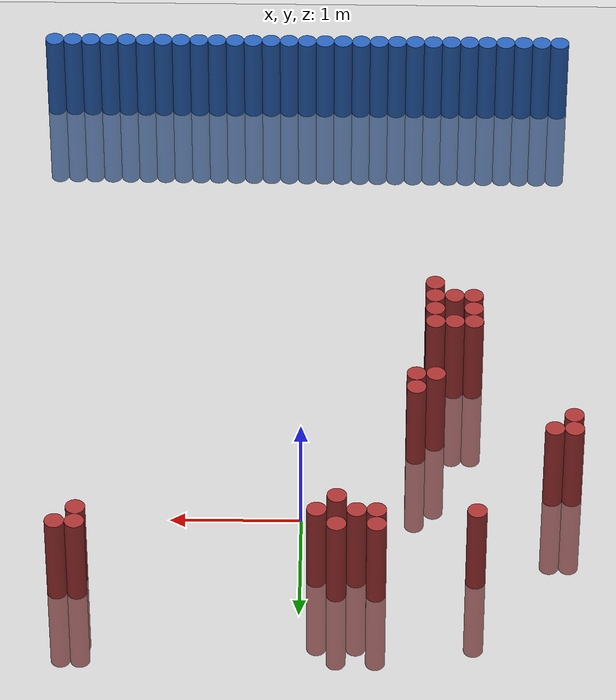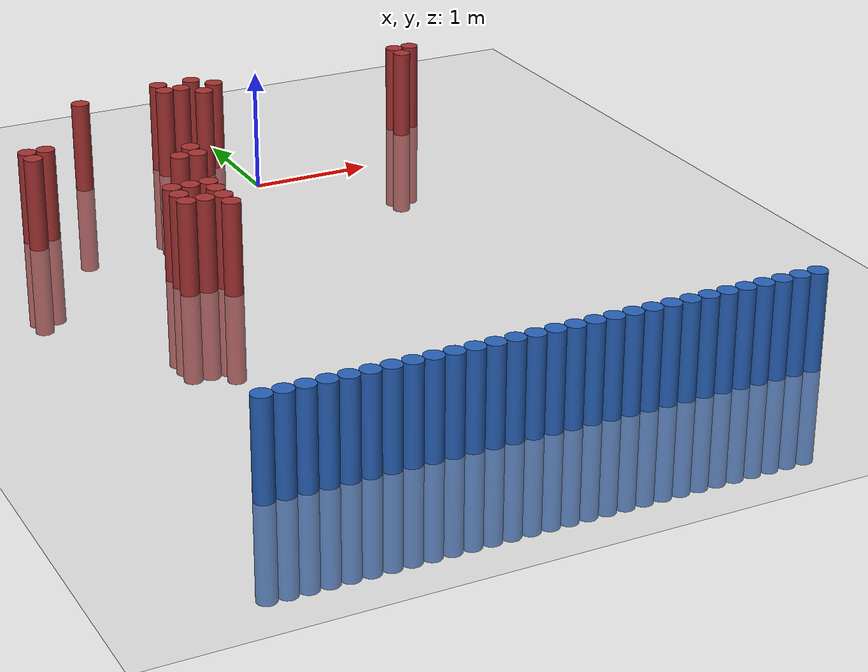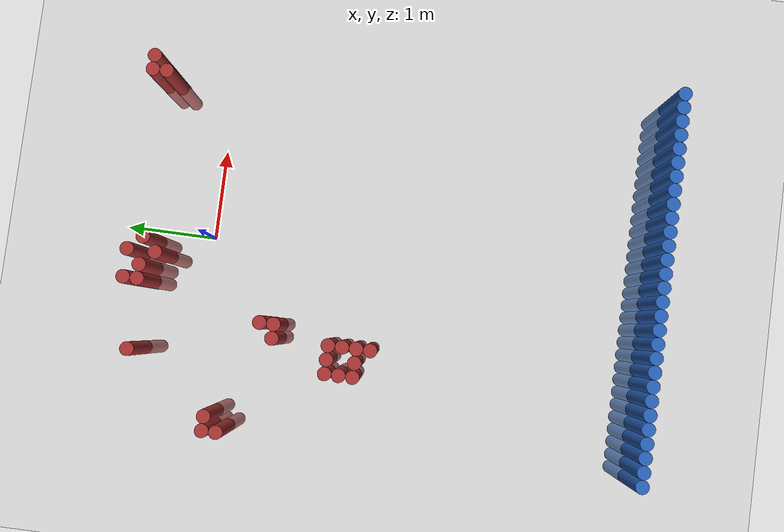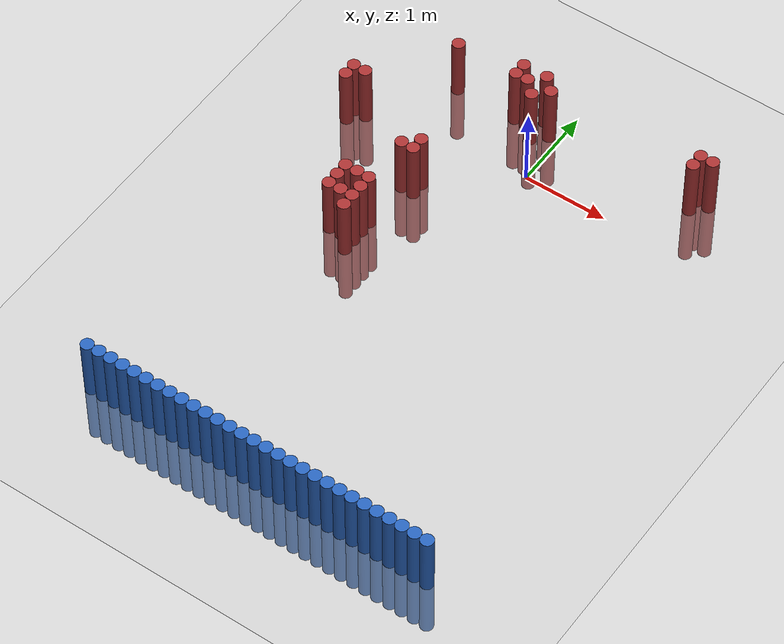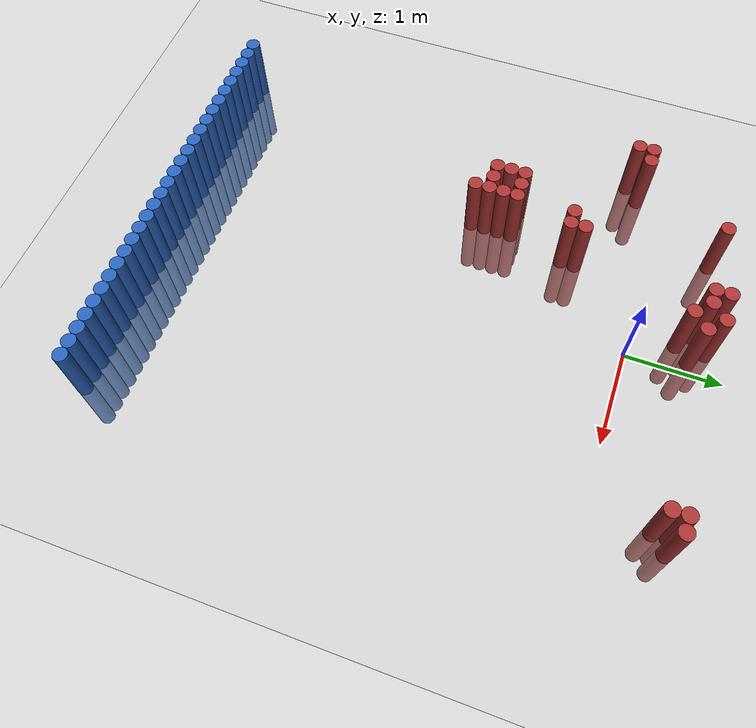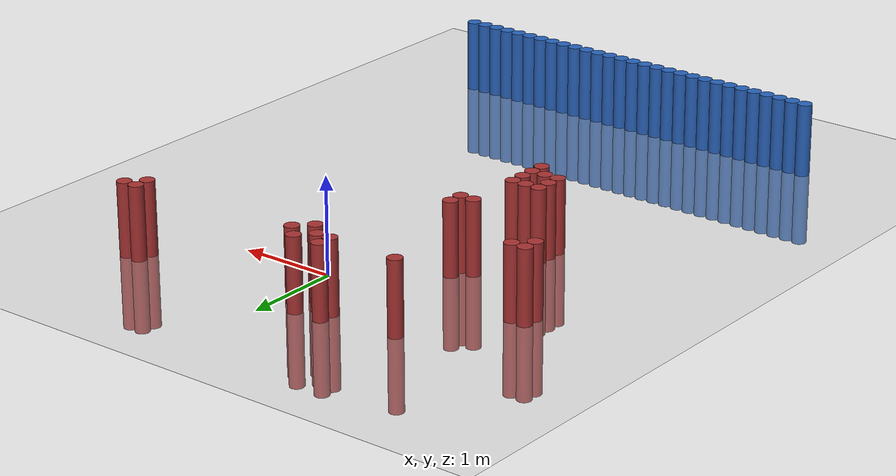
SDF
<sdf version="1.6">
 <world name="default">
  <model name="ground_plane">
   <static>1</static>
   <link name="link">
    <collision name="collision">
     <geometry><plane><normal>0 0 1</normal><size>100 100</size></plane></geometry>
     <surface><friction><ode><mu>100</mu><mu2>50</mu2></ode></friction></surface>
    </collision>
    <visual name="visual">
     <cast_shadows>0</cast_shadows>
     <geometry><plane><normal>0 0 1</normal><size>100 100</size></plane></geometry>
     <material>
      <script><uri>file://media/materials/scripts/gazebo.material</uri><name>Gazebo/Grey</name></script>
     </material>
    </visual>
   </link>
  </model>
  <model name="unit_cylinder_12">
   <static>1</static>
   <pose>2.125000 -4.925000 0.000000 0.000000 0.000000 0.000000</pose>
   <link name="link">
    <inertial>
     <mass>1</mass>
     <inertia><ixx>0.145833</ixx><ixy>0</ixy><ixz>0</ixz><iyy>0.145833</iyy><iyz>0</iyz><izz>0.125</izz></inertia>
    </inertial>
    <collision name="collision">
     <geometry><cylinder><radius>0.075000</radius><length>1.5</length></cylinder></geometry>
    </collision>
    <visual name="visual">
     <geometry><cylinder><radius>0.075000</radius><length>1.5</length></cylinder></geometry>
     <material>
      <ambient>0.152000 0.379000 0.720000 1</ambient>
      <diffuse>0.152000 0.379000 0.720000 1</diffuse>
     </material>
     <material>
      <script><name>Gazebo/Grey</name><uri>file://media/materials/scripts/gazebo.material</uri></script>
     </material>
    </visual>
   </link>
  </model>
  <model name="unit_cylinder_13">
   <static>1</static>
   <pose>1.975000 -4.925000 0.000000 0.000000 0.000000 0.000000</pose>
   <link name="link">
    <inertial>
     <mass>1</mass>
     <inertia><ixx>0.145833</ixx><ixy>0</ixy><ixz>0</ixz><iyy>0.145833</iyy><iyz>0</iyz><izz>0.125</izz></inertia>
    </inertial>
    <collision name="collision">
     <geometry><cylinder><radius>0.075000</radius><length>1.5</length></cylinder></geometry>
    </collision>
    <visual name="visual">
     <geometry><cylinder><radius>0.075000</radius><length>1.5</length></cylinder></geometry>
     <material>
      <ambient>0.152000 0.379000 0.720000 1</ambient>
      <diffuse>0.152000 0.379000 0.720000 1</diffuse>
     </material>
     <material>
      <script><name>Gazebo/Grey</name><uri>file://media/materials/scripts/gazebo.material</uri></script>
     </material>
    </visual>
   </link>
  </model>
  <model name="unit_cylinder_14">
   <static>1</static>
   <pose>1.825000 -4.925000 0.000000 0.000000 0.000000 0.000000</pose>
   <link name="link">
    <inertial>
     <mass>1</mass>
     <inertia><ixx>0.145833</ixx><ixy>0</ixy><ixz>0</ixz><iyy>0.145833</iyy><iyz>0</iyz><izz>0.125</izz></inertia>
    </inertial>
    <collision name="collision">
     <geometry><cylinder><radius>0.075000</radius><length>1.5</length></cylinder></geometry>
    </collision>
    <visual name="visual">
     <geometry><cylinder><radius>0.075000</radius><length>1.5</length></cylinder></geometry>
     <material>
      <ambient>0.152000 0.379000 0.720000 1</ambient>
      <diffuse>0.152000 0.379000 0.720000 1</diffuse>
     </material>
     <material>
      <script><name>Gazebo/Grey</name><uri>file://media/materials/scripts/gazebo.material</uri></script>
     </material>
    </visual>
   </link>
  </model>
  <model name="unit_cylinder_15">
   <static>1</static>
   <pose>1.675000 -4.925000 0.000000 0.000000 0.000000 0.000000</pose>
   <link name="link">
    <inertial>
     <mass>1</mass>
     <inertia><ixx>0.145833</ixx><ixy>0</ixy><ixz>0</ixz><iyy>0.145833</iyy><iyz>0</iyz><izz>0.125</izz></inertia>
    </inertial>
    <collision name="collision">
     <geometry><cylinder><radius>0.075000</radius><length>1.5</length></cylinder></geometry>
    </collision>
    <visual name="visual">
     <geometry><cylinder><radius>0.075000</radius><length>1.5</length></cylinder></geometry>
     <material>
      <ambient>0.152000 0.379000 0.720000 1</ambient>
      <diffuse>0.152000 0.379000 0.720000 1</diffuse>
     </material>
     <material>
      <script><name>Gazebo/Grey</name><uri>file://media/materials/scripts/gazebo.material</uri></script>
     </material>
    </visual>
   </link>
  </model>
  <model name="unit_cylinder_16">
   <static>1</static>
   <pose>1.525000 -4.925000 0.000000 0.000000 0.000000 0.000000</pose>
   <link name="link">
    <inertial>
     <mass>1</mass>
     <inertia><ixx>0.145833</ixx><ixy>0</ixy><ixz>0</ixz><iyy>0.145833</iyy><iyz>0</iyz><izz>0.125</izz></inertia>
    </inertial>
    <collision name="collision">
     <geometry><cylinder><radius>0.075000</radius><length>1.5</length></cylinder></geometry>
    </collision>
    <visual name="visual">
     <geometry><cylinder><radius>0.075000</radius><length>1.5</length></cylinder></geometry>
     <material>
      <ambient>0.152000 0.379000 0.720000 1</ambient>
      <diffuse>0.152000 0.379000 0.720000 1</diffuse>
     </material>
     <material>
      <script><name>Gazebo/Grey</name><uri>file://media/materials/scripts/gazebo.material</uri></script>
     </material>
    </visual>
   </link>
  </model>
  <model name="unit_cylinder_17">
   <static>1</static>
   <pose>1.375000 -4.925000 0.000000 0.000000 0.000000 0.000000</pose>
   <link name="link">
    <inertial>
     <mass>1</mass>
     <inertia><ixx>0.145833</ixx><ixy>0</ixy><ixz>0</ixz><iyy>0.145833</iyy><iyz>0</iyz><izz>0.125</izz></inertia>
    </inertial>
    <collision name="collision">
     <geometry><cylinder><radius>0.075000</radius><length>1.5</length></cylinder></geometry>
    </collision>
    <visual name="visual">
     <geometry><cylinder><radius>0.075000</radius><length>1.5</length></cylinder></geometry>
     <material>
      <ambient>0.152000 0.379000 0.720000 1</ambient>
      <diffuse>0.152000 0.379000 0.720000 1</diffuse>
     </material>
     <material>
      <script><name>Gazebo/Grey</name><uri>file://media/materials/scripts/gazebo.material</uri></script>
     </material>
    </visual>
   </link>
  </model>
  <model name="unit_cylinder_18">
   <static>1</static>
   <pose>1.225000 -4.925000 0.000000 0.000000 0.000000 0.000000</pose>
   <link name="link">
    <inertial>
     <mass>1</mass>
     <inertia><ixx>0.145833</ixx><ixy>0</ixy><ixz>0</ixz><iyy>0.145833</iyy><iyz>0</iyz><izz>0.125</izz></inertia>
    </inertial>
    <collision name="collision">
     <geometry><cylinder><radius>0.075000</radius><length>1.5</length></cylinder></geometry>
    </collision>
    <visual name="visual">
     <geometry><cylinder><radius>0.075000</radius><length>1.5</length></cylinder></geometry>
     <material>
      <ambient>0.152000 0.379000 0.720000 1</ambient>
      <diffuse>0.152000 0.379000 0.720000 1</diffuse>
     </material>
     <material>
      <script><name>Gazebo/Grey</name><uri>file://media/materials/scripts/gazebo.material</uri></script>
     </material>
    </visual>
   </link>
  </model>
  <model name="unit_cylinder_19">
   <static>1</static>
   <pose>1.075000 -4.925000 0.000000 0.000000 0.000000 0.000000</pose>
   <link name="link">
    <inertial>
     <mass>1</mass>
     <inertia><ixx>0.145833</ixx><ixy>0</ixy><ixz>0</ixz><iyy>0.145833</iyy><iyz>0</iyz><izz>0.125</izz></inertia>
    </inertial>
    <collision name="collision">
     <geometry><cylinder><radius>0.075000</radius><length>1.5</length></cylinder></geometry>
    </collision>
    <visual name="visual">
     <geometry><cylinder><radius>0.075000</radius><length>1.5</length></cylinder></geometry>
     <material>
      <ambient>0.152000 0.379000 0.720000 1</ambient>
      <diffuse>0.152000 0.379000 0.720000 1</diffuse>
     </material>
     <material>
      <script><name>Gazebo/Grey</name><uri>file://media/materials/scripts/gazebo.material</uri></script>
     </material>
    </visual>
   </link>
  </model>
  <model name="unit_cylinder_20">
   <static>1</static>
   <pose>0.925000 -4.925000 0.000000 0.000000 0.000000 0.000000</pose>
   <link name="link">
    <inertial>
     <mass>1</mass>
     <inertia><ixx>0.145833</ixx><ixy>0</ixy><ixz>0</ixz><iyy>0.145833</iyy><iyz>0</iyz><izz>0.125</izz></inertia>
    </inertial>
    <collision name="collision">
     <geometry><cylinder><radius>0.075000</radius><length>1.5</length></cylinder></geometry>
    </collision>
    <visual name="visual">
     <geometry><cylinder><radius>0.075000</radius><length>1.5</length></cylinder></geometry>
     <material>
      <ambient>0.152000 0.379000 0.720000 1</ambient>
      <diffuse>0.152000 0.379000 0.720000 1</diffuse>
     </material>
     <material>
      <script><name>Gazebo/Grey</name><uri>file://media/materials/scripts/gazebo.material</uri></script>
     </material>
    </visual>
   </link>
  </model>
  <model name="unit_cylinder_21">
   <static>1</static>
   <pose>0.775000 -4.925000 0.000000 0.000000 0.000000 0.000000</pose>
   <link name="link">
    <inertial>
     <mass>1</mass>
     <inertia><ixx>0.145833</ixx><ixy>0</ixy><ixz>0</ixz><iyy>0.145833</iyy><iyz>0</iyz><izz>0.125</izz></inertia>
    </inertial>
    <collision name="collision">
     <geometry><cylinder><radius>0.075000</radius><length>1.5</length></cylinder></geometry>
    </collision>
    <visual name="visual">
     <geometry><cylinder><radius>0.075000</radius><length>1.5</length></cylinder></geometry>
     <material>
      <ambient>0.152000 0.379000 0.720000 1</ambient>
      <diffuse>0.152000 0.379000 0.720000 1</diffuse>
     </material>
     <material>
      <script><name>Gazebo/Grey</name><uri>file://media/materials/scripts/gazebo.material</uri></script>
     </material>
    </visual>
   </link>
  </model>
  <model name="unit_cylinder_22">
   <static>1</static>
   <pose>0.625000 -4.925000 0.000000 0.000000 0.000000 0.000000</pose>
   <link name="link">
    <inertial>
     <mass>1</mass>
     <inertia><ixx>0.145833</ixx><ixy>0</ixy><ixz>0</ixz><iyy>0.145833</iyy><iyz>0</iyz><izz>0.125</izz></inertia>
    </inertial>
    <collision name="collision">
     <geometry><cylinder><radius>0.075000</radius><length>1.5</length></cylinder></geometry>
    </collision>
    <visual name="visual">
     <geometry><cylinder><radius>0.075000</radius><length>1.5</length></cylinder></geometry>
     <material>
      <ambient>0.152000 0.379000 0.720000 1</ambient>
      <diffuse>0.152000 0.379000 0.720000 1</diffuse>
     </material>
     <material>
      <script><name>Gazebo/Grey</name><uri>file://media/materials/scripts/gazebo.material</uri></script>
     </material>
    </visual>
   </link>
  </model>
  <model name="unit_cylinder_23">
   <static>1</static>
   <pose>0.475000 -4.925000 0.000000 0.000000 0.000000 0.000000</pose>
   <link name="link">
    <inertial>
     <mass>1</mass>
     <inertia><ixx>0.145833</ixx><ixy>0</ixy><ixz>0</ixz><iyy>0.145833</iyy><iyz>0</iyz><izz>0.125</izz></inertia>
    </inertial>
    <collision name="collision">
     <geometry><cylinder><radius>0.075000</radius><length>1.5</length></cylinder></geometry>
    </collision>
    <visual name="visual">
     <geometry><cylinder><radius>0.075000</radius><length>1.5</length></cylinder></geometry>
     <material>
      <ambient>0.152000 0.379000 0.720000 1</ambient>
      <diffuse>0.152000 0.379000 0.720000 1</diffuse>
     </material>
     <material>
      <script><name>Gazebo/Grey</name><uri>file://media/materials/scripts/gazebo.material</uri></script>
     </material>
    </visual>
   </link>
  </model>
  <model name="unit_cylinder_24">
   <static>1</static>
   <pose>0.325000 -4.925000 0.000000 0.000000 0.000000 0.000000</pose>
   <link name="link">
    <inertial>
     <mass>1</mass>
     <inertia><ixx>0.145833</ixx><ixy>0</ixy><ixz>0</ixz><iyy>0.145833</iyy><iyz>0</iyz><izz>0.125</izz></inertia>
    </inertial>
    <collision name="collision">
     <geometry><cylinder><radius>0.075000</radius><length>1.5</length></cylinder></geometry>
    </collision>
    <visual name="visual">
     <geometry><cylinder><radius>0.075000</radius><length>1.5</length></cylinder></geometry>
     <material>
      <ambient>0.152000 0.379000 0.720000 1</ambient>
      <diffuse>0.152000 0.379000 0.720000 1</diffuse>
     </material>
     <material>
      <script><name>Gazebo/Grey</name><uri>file://media/materials/scripts/gazebo.material</uri></script>
     </material>
    </visual>
   </link>
  </model>
  <model name="unit_cylinder_25">
   <static>1</static>
   <pose>0.175000 -4.925000 0.000000 0.000000 0.000000 0.000000</pose>
   <link name="link">
    <inertial>
     <mass>1</mass>
     <inertia><ixx>0.145833</ixx><ixy>0</ixy><ixz>0</ixz><iyy>0.145833</iyy><iyz>0</iyz><izz>0.125</izz></inertia>
    </inertial>
    <collision name="collision">
     <geometry><cylinder><radius>0.075000</radius><length>1.5</length></cylinder></geometry>
    </collision>
    <visual name="visual">
     <geometry><cylinder><radius>0.075000</radius><length>1.5</length></cylinder></geometry>
     <material>
      <ambient>0.152000 0.379000 0.720000 1</ambient>
      <diffuse>0.152000 0.379000 0.720000 1</diffuse>
     </material>
     <material>
      <script><name>Gazebo/Grey</name><uri>file://media/materials/scripts/gazebo.material</uri></script>
     </material>
    </visual>
   </link>
  </model>
  <model name="unit_cylinder_26">
   <static>1</static>
   <pose>0.025000 -4.925000 0.000000 0.000000 0.000000 0.000000</pose>
   <link name="link">
    <inertial>
     <mass>1</mass>
     <inertia><ixx>0.145833</ixx><ixy>0</ixy><ixz>0</ixz><iyy>0.145833</iyy><iyz>0</iyz><izz>0.125</izz></inertia>
    </inertial>
    <collision name="collision">
     <geometry><cylinder><radius>0.075000</radius><length>1.5</length></cylinder></geometry>
    </collision>
    <visual name="visual">
     <geometry><cylinder><radius>0.075000</radius><length>1.5</length></cylinder></geometry>
     <material>
      <ambient>0.152000 0.379000 0.720000 1</ambient>
      <diffuse>0.152000 0.379000 0.720000 1</diffuse>
     </material>
     <material>
      <script><name>Gazebo/Grey</name><uri>file://media/materials/scripts/gazebo.material</uri></script>
     </material>
    </visual>
   </link>
  </model>
  <model name="unit_cylinder_27">
   <static>1</static>
   <pose>-0.125000 -4.925000 0.000000 0.000000 0.000000 0.000000</pose>
   <link name="link">
    <inertial>
     <mass>1</mass>
     <inertia><ixx>0.145833</ixx><ixy>0</ixy><ixz>0</ixz><iyy>0.145833</iyy><iyz>0</iyz><izz>0.125</izz></inertia>
    </inertial>
    <collision name="collision">
     <geometry><cylinder><radius>0.075000</radius><length>1.5</length></cylinder></geometry>
    </collision>
    <visual name="visual">
     <geometry><cylinder><radius>0.075000</radius><length>1.5</length></cylinder></geometry>
     <material>
      <ambient>0.152000 0.379000 0.720000 1</ambient>
      <diffuse>0.152000 0.379000 0.720000 1</diffuse>
     </material>
     <material>
      <script><name>Gazebo/Grey</name><uri>file://media/materials/scripts/gazebo.material</uri></script>
     </material>
    </visual>
   </link>
  </model>
  <model name="unit_cylinder_28">
   <static>1</static>
   <pose>-0.275000 -4.925000 0.000000 0.000000 0.000000 0.000000</pose>
   <link name="link">
    <inertial>
     <mass>1</mass>
     <inertia><ixx>0.145833</ixx><ixy>0</ixy><ixz>0</ixz><iyy>0.145833</iyy><iyz>0</iyz><izz>0.125</izz></inertia>
    </inertial>
    <collision name="collision">
     <geometry><cylinder><radius>0.075000</radius><length>1.5</length></cylinder></geometry>
    </collision>
    <visual name="visual">
     <geometry><cylinder><radius>0.075000</radius><length>1.5</length></cylinder></geometry>
     <material>
      <ambient>0.152000 0.379000 0.720000 1</ambient>
      <diffuse>0.152000 0.379000 0.720000 1</diffuse>
     </material>
     <material>
      <script><name>Gazebo/Grey</name><uri>file://media/materials/scripts/gazebo.material</uri></script>
     </material>
    </visual>
   </link>
  </model>
  <model name="unit_cylinder_29">
   <static>1</static>
   <pose>-0.425000 -4.925000 0.000000 0.000000 0.000000 0.000000</pose>
   <link name="link">
    <inertial>
     <mass>1</mass>
     <inertia><ixx>0.145833</ixx><ixy>0</ixy><ixz>0</ixz><iyy>0.145833</iyy><iyz>0</iyz><izz>0.125</izz></inertia>
    </inertial>
    <collision name="collision">
     <geometry><cylinder><radius>0.075000</radius><length>1.5</length></cylinder></geometry>
    </collision>
    <visual name="visual">
     <geometry><cylinder><radius>0.075000</radius><length>1.5</length></cylinder></geometry>
     <material>
      <ambient>0.152000 0.379000 0.720000 1</ambient>
      <diffuse>0.152000 0.379000 0.720000 1</diffuse>
     </material>
     <material>
      <script><name>Gazebo/Grey</name><uri>file://media/materials/scripts/gazebo.material</uri></script>
     </material>
    </visual>
   </link>
  </model>
  <model name="unit_cylinder_30">
   <static>1</static>
   <pose>-0.575000 -4.925000 0.000000 0.000000 0.000000 0.000000</pose>
   <link name="link">
    <inertial>
     <mass>1</mass>
     <inertia><ixx>0.145833</ixx><ixy>0</ixy><ixz>0</ixz><iyy>0.145833</iyy><iyz>0</iyz><izz>0.125</izz></inertia>
    </inertial>
    <collision name="collision">
     <geometry><cylinder><radius>0.075000</radius><length>1.5</length></cylinder></geometry>
    </collision>
    <visual name="visual">
     <geometry><cylinder><radius>0.075000</radius><length>1.5</length></cylinder></geometry>
     <material>
      <ambient>0.152000 0.379000 0.720000 1</ambient>
      <diffuse>0.152000 0.379000 0.720000 1</diffuse>
     </material>
     <material>
      <script><name>Gazebo/Grey</name><uri>file://media/materials/scripts/gazebo.material</uri></script>
     </material>
    </visual>
   </link>
  </model>
  <model name="unit_cylinder_31">
   <static>1</static>
   <pose>-0.725000 -4.925000 0.000000 0.000000 0.000000 0.000000</pose>
   <link name="link">
    <inertial>
     <mass>1</mass>
     <inertia><ixx>0.145833</ixx><ixy>0</ixy><ixz>0</ixz><iyy>0.145833</iyy><iyz>0</iyz><izz>0.125</izz></inertia>
    </inertial>
    <collision name="collision">
     <geometry><cylinder><radius>0.075000</radius><length>1.5</length></cylinder></geometry>
    </collision>
    <visual name="visual">
     <geometry><cylinder><radius>0.075000</radius><length>1.5</length></cylinder></geometry>
     <material>
      <ambient>0.152000 0.379000 0.720000 1</ambient>
      <diffuse>0.152000 0.379000 0.720000 1</diffuse>
     </material>
     <material>
      <script><name>Gazebo/Grey</name><uri>file://media/materials/scripts/gazebo.material</uri></script>
     </material>
    </visual>
   </link>
  </model>
  <model name="unit_cylinder_32">
   <static>1</static>
   <pose>-0.875000 -4.925000 0.000000 0.000000 0.000000 0.000000</pose>
   <link name="link">
    <inertial>
     <mass>1</mass>
     <inertia><ixx>0.145833</ixx><ixy>0</ixy><ixz>0</ixz><iyy>0.145833</iyy><iyz>0</iyz><izz>0.125</izz></inertia>
    </inertial>
    <collision name="collision">
     <geometry><cylinder><radius>0.075000</radius><length>1.5</length></cylinder></geometry>
    </collision>
    <visual name="visual">
     <geometry><cylinder><radius>0.075000</radius><length>1.5</length></cylinder></geometry>
     <material>
      <ambient>0.152000 0.379000 0.720000 1</ambient>
      <diffuse>0.152000 0.379000 0.720000 1</diffuse>
     </material>
     <material>
      <script><name>Gazebo/Grey</name><uri>file://media/materials/scripts/gazebo.material</uri></script>
     </material>
    </visual>
   </link>
  </model>
  <model name="unit_cylinder_33">
   <static>1</static>
   <pose>-1.025000 -4.925000 0.000000 0.000000 0.000000 0.000000</pose>
   <link name="link">
    <inertial>
     <mass>1</mass>
     <inertia><ixx>0.145833</ixx><ixy>0</ixy><ixz>0</ixz><iyy>0.145833</iyy><iyz>0</iyz><izz>0.125</izz></inertia>
    </inertial>
    <collision name="collision">
     <geometry><cylinder><radius>0.075000</radius><length>1.5</length></cylinder></geometry>
    </collision>
    <visual name="visual">
     <geometry><cylinder><radius>0.075000</radius><length>1.5</length></cylinder></geometry>
     <material>
      <ambient>0.152000 0.379000 0.720000 1</ambient>
      <diffuse>0.152000 0.379000 0.720000 1</diffuse>
     </material>
     <material>
      <script><name>Gazebo/Grey</name><uri>file://media/materials/scripts/gazebo.material</uri></script>
     </material>
    </visual>
   </link>
  </model>
  <model name="unit_cylinder_34">
   <static>1</static>
   <pose>-1.175000 -4.925000 0.000000 0.000000 0.000000 0.000000</pose>
   <link name="link">
    <inertial>
     <mass>1</mass>
     <inertia><ixx>0.145833</ixx><ixy>0</ixy><ixz>0</ixz><iyy>0.145833</iyy><iyz>0</iyz><izz>0.125</izz></inertia>
    </inertial>
    <collision name="collision">
     <geometry><cylinder><radius>0.075000</radius><length>1.5</length></cylinder></geometry>
    </collision>
    <visual name="visual">
     <geometry><cylinder><radius>0.075000</radius><length>1.5</length></cylinder></geometry>
     <material>
      <ambient>0.152000 0.379000 0.720000 1</ambient>
      <diffuse>0.152000 0.379000 0.720000 1</diffuse>
     </material>
     <material>
      <script><name>Gazebo/Grey</name><uri>file://media/materials/scripts/gazebo.material</uri></script>
     </material>
    </visual>
   </link>
  </model>
  <model name="unit_cylinder_35">
   <static>1</static>
   <pose>-1.325000 -4.925000 0.000000 0.000000 0.000000 0.000000</pose>
   <link name="link">
    <inertial>
     <mass>1</mass>
     <inertia><ixx>0.145833</ixx><ixy>0</ixy><ixz>0</ixz><iyy>0.145833</iyy><iyz>0</iyz><izz>0.125</izz></inertia>
    </inertial>
    <collision name="collision">
     <geometry><cylinder><radius>0.075000</radius><length>1.5</length></cylinder></geometry>
    </collision>
    <visual name="visual">
     <geometry><cylinder><radius>0.075000</radius><length>1.5</length></cylinder></geometry>
     <material>
      <ambient>0.152000 0.379000 0.720000 1</ambient>
      <diffuse>0.152000 0.379000 0.720000 1</diffuse>
     </material>
     <material>
      <script><name>Gazebo/Grey</name><uri>file://media/materials/scripts/gazebo.material</uri></script>
     </material>
    </visual>
   </link>
  </model>
  <model name="unit_cylinder_36">
   <static>1</static>
   <pose>-1.475000 -4.925000 0.000000 0.000000 0.000000 0.000000</pose>
   <link name="link">
    <inertial>
     <mass>1</mass>
     <inertia><ixx>0.145833</ixx><ixy>0</ixy><ixz>0</ixz><iyy>0.145833</iyy><iyz>0</iyz><izz>0.125</izz></inertia>
    </inertial>
    <collision name="collision">
     <geometry><cylinder><radius>0.075000</radius><length>1.5</length></cylinder></geometry>
    </collision>
    <visual name="visual">
     <geometry><cylinder><radius>0.075000</radius><length>1.5</length></cylinder></geometry>
     <material>
      <ambient>0.152000 0.379000 0.720000 1</ambient>
      <diffuse>0.152000 0.379000 0.720000 1</diffuse>
     </material>
     <material>
      <script><name>Gazebo/Grey</name><uri>file://media/materials/scripts/gazebo.material</uri></script>
     </material>
    </visual>
   </link>
  </model>
  <model name="unit_cylinder_37">
   <static>1</static>
   <pose>-1.625000 -4.925000 0.000000 0.000000 0.000000 0.000000</pose>
   <link name="link">
    <inertial>
     <mass>1</mass>
     <inertia><ixx>0.145833</ixx><ixy>0</ixy><ixz>0</ixz><iyy>0.145833</iyy><iyz>0</iyz><izz>0.125</izz></inertia>
    </inertial>
    <collision name="collision">
     <geometry><cylinder><radius>0.075000</radius><length>1.5</length></cylinder></geometry>
    </collision>
    <visual name="visual">
     <geometry><cylinder><radius>0.075000</radius><length>1.5</length></cylinder></geometry>
     <material>
      <ambient>0.152000 0.379000 0.720000 1</ambient>
      <diffuse>0.152000 0.379000 0.720000 1</diffuse>
     </material>
     <material>
      <script><name>Gazebo/Grey</name><uri>file://media/materials/scripts/gazebo.material</uri></script>
     </material>
    </visual>
   </link>
  </model>
  <model name="unit_cylinder_38">
   <static>1</static>
   <pose>-1.775000 -4.925000 0.000000 0.000000 0.000000 0.000000</pose>
   <link name="link">
    <inertial>
     <mass>1</mass>
     <inertia><ixx>0.145833</ixx><ixy>0</ixy><ixz>0</ixz><iyy>0.145833</iyy><iyz>0</iyz><izz>0.125</izz></inertia>
    </inertial>
    <collision name="collision">
     <geometry><cylinder><radius>0.075000</radius><length>1.5</length></cylinder></geometry>
    </collision>
    <visual name="visual">
     <geometry><cylinder><radius>0.075000</radius><length>1.5</length></cylinder></geometry>
     <material>
      <ambient>0.152000 0.379000 0.720000 1</ambient>
      <diffuse>0.152000 0.379000 0.720000 1</diffuse>
     </material>
     <material>
      <script><name>Gazebo/Grey</name><uri>file://media/materials/scripts/gazebo.material</uri></script>
     </material>
    </visual>
   </link>
  </model>
  <model name="unit_cylinder_39">
   <static>1</static>
   <pose>-1.925000 -4.925000 0.000000 0.000000 0.000000 0.000000</pose>
   <link name="link">
    <inertial>
     <mass>1</mass>
     <inertia><ixx>0.145833</ixx><ixy>0</ixy><ixz>0</ixz><iyy>0.145833</iyy><iyz>0</iyz><izz>0.125</izz></inertia>
    </inertial>
    <collision name="collision">
     <geometry><cylinder><radius>0.075000</radius><length>1.5</length></cylinder></geometry>
    </collision>
    <visual name="visual">
     <geometry><cylinder><radius>0.075000</radius><length>1.5</length></cylinder></geometry>
     <material>
      <ambient>0.152000 0.379000 0.720000 1</ambient>
      <diffuse>0.152000 0.379000 0.720000 1</diffuse>
     </material>
     <material>
      <script><name>Gazebo/Grey</name><uri>file://media/materials/scripts/gazebo.material</uri></script>
     </material>
    </visual>
   </link>
  </model>
  <model name="unit_cylinder_40">
   <static>1</static>
   <pose>-2.075000 -4.925000 0.000000 0.000000 0.000000 0.000000</pose>
   <link name="link">
    <inertial>
     <mass>1</mass>
     <inertia><ixx>0.145833</ixx><ixy>0</ixy><ixz>0</ixz><iyy>0.145833</iyy><iyz>0</iyz><izz>0.125</izz></inertia>
    </inertial>
    <collision name="collision">
     <geometry><cylinder><radius>0.075000</radius><length>1.5</length></cylinder></geometry>
    </collision>
    <visual name="visual">
     <geometry><cylinder><radius>0.075000</radius><length>1.5</length></cylinder></geometry>
     <material>
      <ambient>0.152000 0.379000 0.720000 1</ambient>
      <diffuse>0.152000 0.379000 0.720000 1</diffuse>
     </material>
     <material>
      <script><name>Gazebo/Grey</name><uri>file://media/materials/scripts/gazebo.material</uri></script>
     </material>
    </visual>
   </link>
  </model>
  <model name="unit_cylinder_329">
   <static>1</static>
   <pose>-2.075000 -0.425000 0.000000 0.000000 0.000000 0.000000</pose>
   <link name="link">
    <inertial>
     <mass>1</mass>
     <inertia><ixx>0.145833</ixx><ixy>0</ixy><ixz>0</ixz><iyy>0.145833</iyy><iyz>0</iyz><izz>0.125</izz></inertia>
    </inertial>
    <collision name="collision">
     <geometry><cylinder><radius>0.075000</radius><length>1.5</length></cylinder></geometry>
    </collision>
    <visual name="visual">
     <geometry><cylinder><radius>0.075000</radius><length>1.5</length></cylinder></geometry>
     <material>
      <ambient>0.648000 0.192000 0.192000 1</ambient>
      <diffuse>0.648000 0.192000 0.192000 1</diffuse>
     </material>
     <material>
      <script><name>Gazebo/Grey</name><uri>file://media/materials/scripts/gazebo.material</uri></script>
     </material>
    </visual>
   </link>
  </model>
  <model name="unit_cylinder_330">
   <static>1</static>
   <pose>-2.075000 -0.275000 0.000000 0.000000 0.000000 0.000000</pose>
   <link name="link">
    <inertial>
     <mass>1</mass>
     <inertia><ixx>0.145833</ixx><ixy>0</ixy><ixz>0</ixz><iyy>0.145833</iyy><iyz>0</iyz><izz>0.125</izz></inertia>
    </inertial>
    <collision name="collision">
     <geometry><cylinder><radius>0.075000</radius><length>1.5</length></cylinder></geometry>
    </collision>
    <visual name="visual">
     <geometry><cylinder><radius>0.075000</radius><length>1.5</length></cylinder></geometry>
     <material>
      <ambient>0.648000 0.192000 0.192000 1</ambient>
      <diffuse>0.648000 0.192000 0.192000 1</diffuse>
     </material>
     <material>
      <script><name>Gazebo/Grey</name><uri>file://media/materials/scripts/gazebo.material</uri></script>
     </material>
    </visual>
   </link>
  </model>
  <model name="unit_cylinder_331">
   <static>1</static>
   <pose>-1.925000 -0.275000 0.000000 0.000000 0.000000 0.000000</pose>
   <link name="link">
    <inertial>
     <mass>1</mass>
     <inertia><ixx>0.145833</ixx><ixy>0</ixy><ixz>0</ixz><iyy>0.145833</iyy><iyz>0</iyz><izz>0.125</izz></inertia>
    </inertial>
    <collision name="collision">
     <geometry><cylinder><radius>0.075000</radius><length>1.5</length></cylinder></geometry>
    </collision>
    <visual name="visual">
     <geometry><cylinder><radius>0.075000</radius><length>1.5</length></cylinder></geometry>
     <material>
      <ambient>0.648000 0.192000 0.192000 1</ambient>
      <diffuse>0.648000 0.192000 0.192000 1</diffuse>
     </material>
     <material>
      <script><name>Gazebo/Grey</name><uri>file://media/materials/scripts/gazebo.material</uri></script>
     </material>
    </visual>
   </link>
  </model>
  <model name="unit_cylinder_343">
   <static>1</static>
   <pose>-1.325000 -1.775000 0.000000 0.000000 0.000000 0.000000</pose>
   <link name="link">
    <inertial>
     <mass>1</mass>
     <inertia><ixx>0.145833</ixx><ixy>0</ixy><ixz>0</ixz><iyy>0.145833</iyy><iyz>0</iyz><izz>0.125</izz></inertia>
    </inertial>
    <collision name="collision">
     <geometry><cylinder><radius>0.075000</radius><length>1.5</length></cylinder></geometry>
    </collision>
    <visual name="visual">
     <geometry><cylinder><radius>0.075000</radius><length>1.5</length></cylinder></geometry>
     <material>
      <ambient>0.648000 0.192000 0.192000 1</ambient>
      <diffuse>0.648000 0.192000 0.192000 1</diffuse>
     </material>
     <material>
      <script><name>Gazebo/Grey</name><uri>file://media/materials/scripts/gazebo.material</uri></script>
     </material>
    </visual>
   </link>
  </model>
  <model name="unit_cylinder_344">
   <static>1</static>
   <pose>-1.325000 -1.625000 0.000000 0.000000 0.000000 0.000000</pose>
   <link name="link">
    <inertial>
     <mass>1</mass>
     <inertia><ixx>0.145833</ixx><ixy>0</ixy><ixz>0</ixz><iyy>0.145833</iyy><iyz>0</iyz><izz>0.125</izz></inertia>
    </inertial>
    <collision name="collision">
     <geometry><cylinder><radius>0.075000</radius><length>1.5</length></cylinder></geometry>
    </collision>
    <visual name="visual">
     <geometry><cylinder><radius>0.075000</radius><length>1.5</length></cylinder></geometry>
     <material>
      <ambient>0.648000 0.192000 0.192000 1</ambient>
      <diffuse>0.648000 0.192000 0.192000 1</diffuse>
     </material>
     <material>
      <script><name>Gazebo/Grey</name><uri>file://media/materials/scripts/gazebo.material</uri></script>
     </material>
    </visual>
   </link>
  </model>
  <model name="unit_cylinder_345">
   <static>1</static>
   <pose>-1.325000 -1.475000 0.000000 0.000000 0.000000 0.000000</pose>
   <link name="link">
    <inertial>
     <mass>1</mass>
     <inertia><ixx>0.145833</ixx><ixy>0</ixy><ixz>0</ixz><iyy>0.145833</iyy><iyz>0</iyz><izz>0.125</izz></inertia>
    </inertial>
    <collision name="collision">
     <geometry><cylinder><radius>0.075000</radius><length>1.5</length></cylinder></geometry>
    </collision>
    <visual name="visual">
     <geometry><cylinder><radius>0.075000</radius><length>1.5</length></cylinder></geometry>
     <material>
      <ambient>0.648000 0.192000 0.192000 1</ambient>
      <diffuse>0.648000 0.192000 0.192000 1</diffuse>
     </material>
     <material>
      <script><name>Gazebo/Grey</name><uri>file://media/materials/scripts/gazebo.material</uri></script>
     </material>
    </visual>
   </link>
  </model>
  <model name="unit_cylinder_346">
   <static>1</static>
   <pose>-1.325000 0.625000 0.000000 0.000000 0.000000 0.000000</pose>
   <link name="link">
    <inertial>
     <mass>1</mass>
     <inertia><ixx>0.145833</ixx><ixy>0</ixy><ixz>0</ixz><iyy>0.145833</iyy><iyz>0</iyz><izz>0.125</izz></inertia>
    </inertial>
    <collision name="collision">
     <geometry><cylinder><radius>0.075000</radius><length>1.5</length></cylinder></geometry>
    </collision>
    <visual name="visual">
     <geometry><cylinder><radius>0.075000</radius><length>1.5</length></cylinder></geometry>
     <material>
      <ambient>0.648000 0.192000 0.192000 1</ambient>
      <diffuse>0.648000 0.192000 0.192000 1</diffuse>
     </material>
     <material>
      <script><name>Gazebo/Grey</name><uri>file://media/materials/scripts/gazebo.material</uri></script>
     </material>
    </visual>
   </link>
  </model>
  <model name="unit_cylinder_349">
   <static>1</static>
   <pose>-1.175000 -1.775000 0.000000 0.000000 0.000000 0.000000</pose>
   <link name="link">
    <inertial>
     <mass>1</mass>
     <inertia><ixx>0.145833</ixx><ixy>0</ixy><ixz>0</ixz><iyy>0.145833</iyy><iyz>0</iyz><izz>0.125</izz></inertia>
    </inertial>
    <collision name="collision">
     <geometry><cylinder><radius>0.075000</radius><length>1.5</length></cylinder></geometry>
    </collision>
    <visual name="visual">
     <geometry><cylinder><radius>0.075000</radius><length>1.5</length></cylinder></geometry>
     <material>
      <ambient>0.648000 0.192000 0.192000 1</ambient>
      <diffuse>0.648000 0.192000 0.192000 1</diffuse>
     </material>
     <material>
      <script><name>Gazebo/Grey</name><uri>file://media/materials/scripts/gazebo.material</uri></script>
     </material>
    </visual>
   </link>
  </model>
  <model name="unit_cylinder_350">
   <static>1</static>
   <pose>-1.175000 -1.475000 0.000000 0.000000 0.000000 0.000000</pose>
   <link name="link">
    <inertial>
     <mass>1</mass>
     <inertia><ixx>0.145833</ixx><ixy>0</ixy><ixz>0</ixz><iyy>0.145833</iyy><iyz>0</iyz><izz>0.125</izz></inertia>
    </inertial>
    <collision name="collision">
     <geometry><cylinder><radius>0.075000</radius><length>1.5</length></cylinder></geometry>
    </collision>
    <visual name="visual">
     <geometry><cylinder><radius>0.075000</radius><length>1.5</length></cylinder></geometry>
     <material>
      <ambient>0.648000 0.192000 0.192000 1</ambient>
      <diffuse>0.648000 0.192000 0.192000 1</diffuse>
     </material>
     <material>
      <script><name>Gazebo/Grey</name><uri>file://media/materials/scripts/gazebo.material</uri></script>
     </material>
    </visual>
   </link>
  </model>
  <model name="unit_cylinder_353">
   <static>1</static>
   <pose>-1.025000 -1.925000 0.000000 0.000000 0.000000 0.000000</pose>
   <link name="link">
    <inertial>
     <mass>1</mass>
     <inertia><ixx>0.145833</ixx><ixy>0</ixy><ixz>0</ixz><iyy>0.145833</iyy><iyz>0</iyz><izz>0.125</izz></inertia>
    </inertial>
    <collision name="collision">
     <geometry><cylinder><radius>0.075000</radius><length>1.5</length></cylinder></geometry>
    </collision>
    <visual name="visual">
     <geometry><cylinder><radius>0.075000</radius><length>1.5</length></cylinder></geometry>
     <material>
      <ambient>0.648000 0.192000 0.192000 1</ambient>
      <diffuse>0.648000 0.192000 0.192000 1</diffuse>
     </material>
     <material>
      <script><name>Gazebo/Grey</name><uri>file://media/materials/scripts/gazebo.material</uri></script>
     </material>
    </visual>
   </link>
  </model>
  <model name="unit_cylinder_354">
   <static>1</static>
   <pose>-1.025000 -1.775000 0.000000 0.000000 0.000000 0.000000</pose>
   <link name="link">
    <inertial>
     <mass>1</mass>
     <inertia><ixx>0.145833</ixx><ixy>0</ixy><ixz>0</ixz><iyy>0.145833</iyy><iyz>0</iyz><izz>0.125</izz></inertia>
    </inertial>
    <collision name="collision">
     <geometry><cylinder><radius>0.075000</radius><length>1.5</length></cylinder></geometry>
    </collision>
    <visual name="visual">
     <geometry><cylinder><radius>0.075000</radius><length>1.5</length></cylinder></geometry>
     <material>
      <ambient>0.648000 0.192000 0.192000 1</ambient>
      <diffuse>0.648000 0.192000 0.192000 1</diffuse>
     </material>
     <material>
      <script><name>Gazebo/Grey</name><uri>file://media/materials/scripts/gazebo.material</uri></script>
     </material>
    </visual>
   </link>
  </model>
  <model name="unit_cylinder_355">
   <static>1</static>
   <pose>-1.025000 -1.625000 0.000000 0.000000 0.000000 0.000000</pose>
   <link name="link">
    <inertial>
     <mass>1</mass>
     <inertia><ixx>0.145833</ixx><ixy>0</ixy><ixz>0</ixz><iyy>0.145833</iyy><iyz>0</iyz><izz>0.125</izz></inertia>
    </inertial>
    <collision name="collision">
     <geometry><cylinder><radius>0.075000</radius><length>1.5</length></cylinder></geometry>
    </collision>
    <visual name="visual">
     <geometry><cylinder><radius>0.075000</radius><length>1.5</length></cylinder></geometry>
     <material>
      <ambient>0.648000 0.192000 0.192000 1</ambient>
      <diffuse>0.648000 0.192000 0.192000 1</diffuse>
     </material>
     <material>
      <script><name>Gazebo/Grey</name><uri>file://media/materials/scripts/gazebo.material</uri></script>
     </material>
    </visual>
   </link>
  </model>
  <model name="unit_cylinder_356">
   <static>1</static>
   <pose>-1.025000 -1.475000 0.000000 0.000000 0.000000 0.000000</pose>
   <link name="link">
    <inertial>
     <mass>1</mass>
     <inertia><ixx>0.145833</ixx><ixy>0</ixy><ixz>0</ixz><iyy>0.145833</iyy><iyz>0</iyz><izz>0.125</izz></inertia>
    </inertial>
    <collision name="collision">
     <geometry><cylinder><radius>0.075000</radius><length>1.5</length></cylinder></geometry>
    </collision>
    <visual name="visual">
     <geometry><cylinder><radius>0.075000</radius><length>1.5</length></cylinder></geometry>
     <material>
      <ambient>0.648000 0.192000 0.192000 1</ambient>
      <diffuse>0.648000 0.192000 0.192000 1</diffuse>
     </material>
     <material>
      <script><name>Gazebo/Grey</name><uri>file://media/materials/scripts/gazebo.material</uri></script>
     </material>
    </visual>
   </link>
  </model>
  <model name="unit_cylinder_357">
   <static>1</static>
   <pose>-1.025000 -0.875000 0.000000 0.000000 0.000000 0.000000</pose>
   <link name="link">
    <inertial>
     <mass>1</mass>
     <inertia><ixx>0.145833</ixx><ixy>0</ixy><ixz>0</ixz><iyy>0.145833</iyy><iyz>0</iyz><izz>0.125</izz></inertia>
    </inertial>
    <collision name="collision">
     <geometry><cylinder><radius>0.075000</radius><length>1.5</length></cylinder></geometry>
    </collision>
    <visual name="visual">
     <geometry><cylinder><radius>0.075000</radius><length>1.5</length></cylinder></geometry>
     <material>
      <ambient>0.648000 0.192000 0.192000 1</ambient>
      <diffuse>0.648000 0.192000 0.192000 1</diffuse>
     </material>
     <material>
      <script><name>Gazebo/Grey</name><uri>file://media/materials/scripts/gazebo.material</uri></script>
     </material>
    </visual>
   </link>
  </model>
  <model name="unit_cylinder_362">
   <static>1</static>
   <pose>-0.875000 -0.875000 0.000000 0.000000 0.000000 0.000000</pose>
   <link name="link">
    <inertial>
     <mass>1</mass>
     <inertia><ixx>0.145833</ixx><ixy>0</ixy><ixz>0</ixz><iyy>0.145833</iyy><iyz>0</iyz><izz>0.125</izz></inertia>
    </inertial>
    <collision name="collision">
     <geometry><cylinder><radius>0.075000</radius><length>1.5</length></cylinder></geometry>
    </collision>
    <visual name="visual">
     <geometry><cylinder><radius>0.075000</radius><length>1.5</length></cylinder></geometry>
     <material>
      <ambient>0.648000 0.192000 0.192000 1</ambient>
      <diffuse>0.648000 0.192000 0.192000 1</diffuse>
     </material>
     <material>
      <script><name>Gazebo/Grey</name><uri>file://media/materials/scripts/gazebo.material</uri></script>
     </material>
    </visual>
   </link>
  </model>
  <model name="unit_cylinder_363">
   <static>1</static>
   <pose>-0.875000 -0.725000 0.000000 0.000000 0.000000 0.000000</pose>
   <link name="link">
    <inertial>
     <mass>1</mass>
     <inertia><ixx>0.145833</ixx><ixy>0</ixy><ixz>0</ixz><iyy>0.145833</iyy><iyz>0</iyz><izz>0.125</izz></inertia>
    </inertial>
    <collision name="collision">
     <geometry><cylinder><radius>0.075000</radius><length>1.5</length></cylinder></geometry>
    </collision>
    <visual name="visual">
     <geometry><cylinder><radius>0.075000</radius><length>1.5</length></cylinder></geometry>
     <material>
      <ambient>0.648000 0.192000 0.192000 1</ambient>
      <diffuse>0.648000 0.192000 0.192000 1</diffuse>
     </material>
     <material>
      <script><name>Gazebo/Grey</name><uri>file://media/materials/scripts/gazebo.material</uri></script>
     </material>
    </visual>
   </link>
  </model>
  <model name="unit_cylinder_371">
   <static>1</static>
   <pose>-0.575000 0.625000 0.000000 0.000000 0.000000 0.000000</pose>
   <link name="link">
    <inertial>
     <mass>1</mass>
     <inertia><ixx>0.145833</ixx><ixy>0</ixy><ixz>0</ixz><iyy>0.145833</iyy><iyz>0</iyz><izz>0.125</izz></inertia>
    </inertial>
    <collision name="collision">
     <geometry><cylinder><radius>0.075000</radius><length>1.5</length></cylinder></geometry>
    </collision>
    <visual name="visual">
     <geometry><cylinder><radius>0.075000</radius><length>1.5</length></cylinder></geometry>
     <material>
      <ambient>0.648000 0.192000 0.192000 1</ambient>
      <diffuse>0.648000 0.192000 0.192000 1</diffuse>
     </material>
     <material>
      <script><name>Gazebo/Grey</name><uri>file://media/materials/scripts/gazebo.material</uri></script>
     </material>
    </visual>
   </link>
  </model>
  <model name="unit_cylinder_372">
   <static>1</static>
   <pose>-0.575000 0.775000 0.000000 0.000000 0.000000 0.000000</pose>
   <link name="link">
    <inertial>
     <mass>1</mass>
     <inertia><ixx>0.145833</ixx><ixy>0</ixy><ixz>0</ixz><iyy>0.145833</iyy><iyz>0</iyz><izz>0.125</izz></inertia>
    </inertial>
    <collision name="collision">
     <geometry><cylinder><radius>0.075000</radius><length>1.5</length></cylinder></geometry>
    </collision>
    <visual name="visual">
     <geometry><cylinder><radius>0.075000</radius><length>1.5</length></cylinder></geometry>
     <material>
      <ambient>0.648000 0.192000 0.192000 1</ambient>
      <diffuse>0.648000 0.192000 0.192000 1</diffuse>
     </material>
     <material>
      <script><name>Gazebo/Grey</name><uri>file://media/materials/scripts/gazebo.material</uri></script>
     </material>
    </visual>
   </link>
  </model>
  <model name="unit_cylinder_374">
   <static>1</static>
   <pose>-0.425000 0.625000 0.000000 0.000000 0.000000 0.000000</pose>
   <link name="link">
    <inertial>
     <mass>1</mass>
     <inertia><ixx>0.145833</ixx><ixy>0</ixy><ixz>0</ixz><iyy>0.145833</iyy><iyz>0</iyz><izz>0.125</izz></inertia>
    </inertial>
    <collision name="collision">
     <geometry><cylinder><radius>0.075000</radius><length>1.5</length></cylinder></geometry>
    </collision>
    <visual name="visual">
     <geometry><cylinder><radius>0.075000</radius><length>1.5</length></cylinder></geometry>
     <material>
      <ambient>0.648000 0.192000 0.192000 1</ambient>
      <diffuse>0.648000 0.192000 0.192000 1</diffuse>
     </material>
     <material>
      <script><name>Gazebo/Grey</name><uri>file://media/materials/scripts/gazebo.material</uri></script>
     </material>
    </visual>
   </link>
  </model>
  <model name="unit_cylinder_376">
   <static>1</static>
   <pose>-0.275000 0.475000 0.000000 0.000000 0.000000 0.000000</pose>
   <link name="link">
    <inertial>
     <mass>1</mass>
     <inertia><ixx>0.145833</ixx><ixy>0</ixy><ixz>0</ixz><iyy>0.145833</iyy><iyz>0</iyz><izz>0.125</izz></inertia>
    </inertial>
    <collision name="collision">
     <geometry><cylinder><radius>0.075000</radius><length>1.5</length></cylinder></geometry>
    </collision>
    <visual name="visual">
     <geometry><cylinder><radius>0.075000</radius><length>1.5</length></cylinder></geometry>
     <material>
      <ambient>0.648000 0.192000 0.192000 1</ambient>
      <diffuse>0.648000 0.192000 0.192000 1</diffuse>
     </material>
     <material>
      <script><name>Gazebo/Grey</name><uri>file://media/materials/scripts/gazebo.material</uri></script>
     </material>
    </visual>
   </link>
  </model>
  <model name="unit_cylinder_377">
   <static>1</static>
   <pose>-0.275000 0.775000 0.000000 0.000000 0.000000 0.000000</pose>
   <link name="link">
    <inertial>
     <mass>1</mass>
     <inertia><ixx>0.145833</ixx><ixy>0</ixy><ixz>0</ixz><iyy>0.145833</iyy><iyz>0</iyz><izz>0.125</izz></inertia>
    </inertial>
    <collision name="collision">
     <geometry><cylinder><radius>0.075000</radius><length>1.5</length></cylinder></geometry>
    </collision>
    <visual name="visual">
     <geometry><cylinder><radius>0.075000</radius><length>1.5</length></cylinder></geometry>
     <material>
      <ambient>0.648000 0.192000 0.192000 1</ambient>
      <diffuse>0.648000 0.192000 0.192000 1</diffuse>
     </material>
     <material>
      <script><name>Gazebo/Grey</name><uri>file://media/materials/scripts/gazebo.material</uri></script>
     </material>
    </visual>
   </link>
  </model>
  <model name="unit_cylinder_381">
   <static>1</static>
   <pose>-0.125000 0.625000 0.000000 0.000000 0.000000 0.000000</pose>
   <link name="link">
    <inertial>
     <mass>1</mass>
     <inertia><ixx>0.145833</ixx><ixy>0</ixy><ixz>0</ixz><iyy>0.145833</iyy><iyz>0</iyz><izz>0.125</izz></inertia>
    </inertial>
    <collision name="collision">
     <geometry><cylinder><radius>0.075000</radius><length>1.5</length></cylinder></geometry>
    </collision>
    <visual name="visual">
     <geometry><cylinder><radius>0.075000</radius><length>1.5</length></cylinder></geometry>
     <material>
      <ambient>0.648000 0.192000 0.192000 1</ambient>
      <diffuse>0.648000 0.192000 0.192000 1</diffuse>
     </material>
     <material>
      <script><name>Gazebo/Grey</name><uri>file://media/materials/scripts/gazebo.material</uri></script>
     </material>
    </visual>
   </link>
  </model>
  <model name="unit_cylinder_402">
   <static>1</static>
   <pose>1.675000 0.625000 0.000000 0.000000 0.000000 0.000000</pose>
   <link name="link">
    <inertial>
     <mass>1</mass>
     <inertia><ixx>0.145833</ixx><ixy>0</ixy><ixz>0</ixz><iyy>0.145833</iyy><iyz>0</iyz><izz>0.125</izz></inertia>
    </inertial>
    <collision name="collision">
     <geometry><cylinder><radius>0.075000</radius><length>1.5</length></cylinder></geometry>
    </collision>
    <visual name="visual">
     <geometry><cylinder><radius>0.075000</radius><length>1.5</length></cylinder></geometry>
     <material>
      <ambient>0.648000 0.192000 0.192000 1</ambient>
      <diffuse>0.648000 0.192000 0.192000 1</diffuse>
     </material>
     <material>
      <script><name>Gazebo/Grey</name><uri>file://media/materials/scripts/gazebo.material</uri></script>
     </material>
    </visual>
   </link>
  </model>
  <model name="unit_cylinder_403">
   <static>1</static>
   <pose>1.675000 0.775000 0.000000 0.000000 0.000000 0.000000</pose>
   <link name="link">
    <inertial>
     <mass>1</mass>
     <inertia><ixx>0.145833</ixx><ixy>0</ixy><ixz>0</ixz><iyy>0.145833</iyy><iyz>0</iyz><izz>0.125</izz></inertia>
    </inertial>
    <collision name="collision">
     <geometry><cylinder><radius>0.075000</radius><length>1.5</length></cylinder></geometry>
    </collision>
    <visual name="visual">
     <geometry><cylinder><radius>0.075000</radius><length>1.5</length></cylinder></geometry>
     <material>
      <ambient>0.648000 0.192000 0.192000 1</ambient>
      <diffuse>0.648000 0.192000 0.192000 1</diffuse>
     </material>
     <material>
      <script><name>Gazebo/Grey</name><uri>file://media/materials/scripts/gazebo.material</uri></script>
     </material>
    </visual>
   </link>
  </model>
  <model name="unit_cylinder_407">
   <static>1</static>
   <pose>1.825000 0.775000 0.000000 0.000000 0.000000 0.000000</pose>
   <link name="link">
    <inertial>
     <mass>1</mass>
     <inertia><ixx>0.145833</ixx><ixy>0</ixy><ixz>0</ixz><iyy>0.145833</iyy><iyz>0</iyz><izz>0.125</izz></inertia>
    </inertial>
    <collision name="collision">
     <geometry><cylinder><radius>0.075000</radius><length>1.5</length></cylinder></geometry>
    </collision>
    <visual name="visual">
     <geometry><cylinder><radius>0.075000</radius><length>1.5</length></cylinder></geometry>
     <material>
      <ambient>0.648000 0.192000 0.192000 1</ambient>
      <diffuse>0.648000 0.192000 0.192000 1</diffuse>
     </material>
     <material>
      <script><name>Gazebo/Grey</name><uri>file://media/materials/scripts/gazebo.material</uri></script>
     </material>
    </visual>
   </link>
  </model>
 </world>
</sdf>
